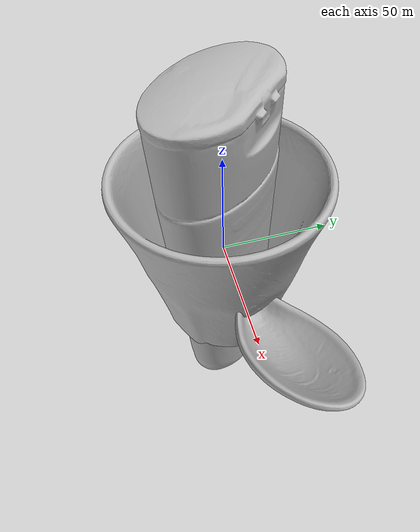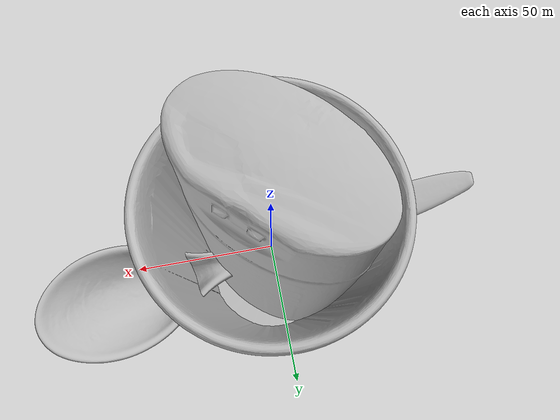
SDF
<sdf version="1.4">
 <world name="default">
  <light name="light1" type="point">
   <pose>0 0 1 0 0 0</pose>
   <diffuse>3 3 3 1</diffuse>
   <specular>3 3 3 1</specular>
  </light>
  <light name="light2" type="point">
   <pose>0 0.5 2 0 0 0</pose>
   <diffuse>1 1 1 1</diffuse>
   <specular>1 1 1 1</specular>
  </light>
  <light name="light3" type="point">
   <pose>0 0.5 2 0 0 0</pose>
   <diffuse>3 3 3 1</diffuse>
   <specular>3 3 3 1</specular>
  </light>
  <scene><ambient>0.7 0.7 0.7</ambient></scene>
  <model name="bottle1">
   <link name="link_bottle1">
    <collision name="default">
     <geometry>
      <mesh><uri>model://pure_zhen/collision_meshes/collision.obj</uri><scale>1.0 1.0 1.0</scale></mesh>
     </geometry>
     <surface>
      <friction><ode><mu>0.5</mu><mu2>0.5</mu2></ode></friction>
      <contact><ode><max_vel>0</max_vel><min_depth>0.0001</min_depth><kp>1e8</kp></ode></contact>
     </surface>
    </collision>
    <visual name="default">
     <geometry>
      <mesh><uri>model://pure_zhen/visual_meshes/visual.dae</uri><scale>1.0 1.0 1.0</scale></mesh>
     </geometry>
    </visual>
    <inertial>
     <mass>0.21128538250923157</mass>
     <pose>-8.582300506532192e-05 0.0002452346670906991 -0.0015797390369698405 -0.027642443229877835 0.005619248866174896 0.3057200614584077</pose>
     <inertia>
      <ixx>0.00063332287</ixx>
      <iyy>0.00063348823</iyy>
      <izz>6.6904315e-05</izz>
      <ixy>0</ixy>
      <ixz>0</ixz>
      <iyz>0</iyz>
     </inertia>
    </inertial>
   </link>
   <pose>-0.07307341694831848 0.37081363797187805 0.09196119010448456 0.016668784483224328 0.002256542051016265 -1.3677991403294825</pose>
  </model>
  <model name="bottle2">
   <link name="link_bottle2">
    <collision name="default">
     <geometry>
      <mesh><uri>model://conditioner/collision_meshes/collision.obj</uri><scale>1.0 1.0 1.0</scale></mesh>
     </geometry>
     <surface>
      <friction><ode><mu>0.5</mu><mu2>0.5</mu2></ode></friction>
      <contact><ode><max_vel>0</max_vel><min_depth>0.0001</min_depth><kp>1e8</kp></ode></contact>
     </surface>
    </collision>
    <visual name="default">
     <geometry>
      <mesh><uri>model://conditioner/visual_meshes/visual.dae</uri><scale>1.0 1.0 1.0</scale></mesh>
     </geometry>
    </visual>
    <inertial>
     <mass>0.3611464500427246</mass>
     <pose>-0.00055994390277192 -0.0001729748910292983 0.004359682556241751 -0.005038374424784669 0.01530604350153207 0.015072341368129788</pose>
     <inertia>
      <ixx>0.00078562286</ixx>
      <iyy>0.0008415716</iyy>
      <izz>0.00012113213</izz>
      <ixy>0</ixy>
      <ixz>0</ixz>
      <iyz>0</iyz>
     </inertia>
    </inertial>
   </link>
   <pose>-0.0752607062458992 0.05611138045787811 0.08122971653938293 0.03689249616265383 -0.015660072038026124 -0.7880453534519309</pose>
  </model>
  <model name="silverware1">
   <link name="link_silverware1">
    <collision name="default">
     <geometry>
      <mesh><uri>model://doraemon_spoon/collision_meshes/collision.obj</uri><scale>1.0 1.0 1.0</scale></mesh>
     </geometry>
     <surface>
      <friction><ode><mu>0.5</mu><mu2>0.5</mu2></ode></friction>
      <contact><ode><max_vel>0</max_vel><min_depth>0.0001</min_depth><kp>1e8</kp></ode></contact>
     </surface>
    </collision>
    <visual name="default">
     <geometry>
      <mesh><uri>model://doraemon_spoon/visual_meshes/visual.dae</uri><scale>1.0 1.0 1.0</scale></mesh>
     </geometry>
    </visual>
    <inertial>
     <mass>0.02099660225212574</mass>
     <pose>-0.02216508239507675 -0.0006374581134878099 -0.003332545980811119 -0.009147162014623967 0.07380421234862718 -0.01412382746948542</pose>
     <inertia>
      <ixx>1.6446534e-06</ixx>
      <iyy>4.671061e-05</iyy>
      <izz>4.7504738e-05</izz>
      <ixy>0</ixy>
      <ixz>0</ixz>
      <iyz>0</iyz>
     </inertia>
    </inertial>
   </link>
   <pose>0.21428658068180084 -0.11419333517551422 0.014739342033863068 0.2787990367393885 -0.010334331897884302 -2.9637897097314845</pose>
  </model>
  <model name="stationery1">
   <link name="link_stationery1">
    <collision name="default">
     <geometry>
      <mesh><uri>model://correction_fuid/collision_meshes/collision.obj</uri><scale>1.0 1.0 1.0</scale></mesh>
     </geometry>
     <surface>
      <friction><ode><mu>0.5</mu><mu2>0.5</mu2></ode></friction>
      <contact><ode><max_vel>0</max_vel><min_depth>0.0001</min_depth><kp>1e8</kp></ode></contact>
     </surface>
    </collision>
    <visual name="default">
     <geometry>
      <mesh><uri>model://correction_fuid/visual_meshes/visual.dae</uri><scale>1.0 1.0 1.0</scale></mesh>
     </geometry>
    </visual>
    <inertial>
     <mass>0.046645622700452805</mass>
     <pose>-0.00012557735317386687 -0.0009722909890115261 -0.001618212671019137 -0.010846607840907904 0.019488357502694276 -0.015992455488392</pose>
     <inertia>
      <ixx>4.5177083e-05</ixx>
      <iyy>2.7341744e-06</iyy>
      <izz>4.635291e-05</izz>
      <ixy>0</ixy>
      <ixz>0</ixz>
      <iyz>0</iyz>
     </inertia>
    </inertial>
   </link>
   <pose>0.028303278610110283 -0.0715242326259613 0.009632829576730728 -0.0017271279709463003 -0.056167910213595226 0.44148558820852873</pose>
  </model>
  <model name="bowl1">
   <link name="link_bowl1">
    <collision name="default">
     <geometry>
      <mesh><uri>model://doraemon_bowl/collision_meshes/collision.obj</uri><scale>1.0 1.0 1.0</scale></mesh>
     </geometry>
     <surface>
      <friction><ode><mu>0.5</mu><mu2>0.5</mu2></ode></friction>
      <contact><ode><max_vel>0</max_vel><min_depth>0.0001</min_depth><kp>1e8</kp></ode></contact>
     </surface>
    </collision>
    <visual name="default">
     <geometry>
      <mesh><uri>model://doraemon_bowl/visual_meshes/visual.dae</uri><scale>1.0 1.0 1.0</scale></mesh>
     </geometry>
    </visual>
    <inertial>
     <mass>0.11811670660972595</mass>
     <pose>-0.014629551209509373 0.0004857121384702623 -0.0020864885300397873 -0.00509396228069995 -0.10568398533611668 -0.02642645986873745</pose>
     <inertia>
      <ixx>0.00016378764</ixx>
      <iyy>0.00021554313</iyy>
      <izz>0.00031711452</izz>
      <ixy>0</ixy>
      <ixz>0</ixz>
      <iyz>0</iyz>
     </inertia>
    </inertial>
   </link>
   <pose>0.029549870640039444 0.29551106691360474 0.02590550296008587 0.008593315565159227 0.006343559024426162 -2.7260808185942755</pose>
  </model>
  <model name="cup1">
   <link name="link_cup1">
    <collision name="default">
     <geometry>
      <mesh><uri>model://hello_kitty_cup/collision_meshes/collision.obj</uri><scale>1.0 1.0 1.0</scale></mesh>
     </geometry>
     <surface>
      <friction><ode><mu>0.5</mu><mu2>0.5</mu2></ode></friction>
      <contact><ode><max_vel>0</max_vel><min_depth>0.0001</min_depth><kp>1e8</kp></ode></contact>
     </surface>
    </collision>
    <visual name="default">
     <geometry>
      <mesh><uri>model://hello_kitty_cup/visual_meshes/visual.dae</uri><scale>1.0 1.0 1.0</scale></mesh>
     </geometry>
    </visual>
    <inertial>
     <mass>0.06522195786237717</mass>
     <pose>0.00027251147548668087 0.0002795039035845548 0.003044978016987443 0.05779148941225366 0.007964866585370347 -0.020452001862605422</pose>
     <inertia>
      <ixx>8.981858e-05</ixx>
      <iyy>9.081978e-05</iyy>
      <izz>7.573251e-05</izz>
      <ixy>0</ixy>
      <ixz>0</ixz>
      <iyz>0</iyz>
     </inertia>
    </inertial>
   </link>
   <pose>0.19636978209018707 -0.35629022121429443 0.046213965862989426 -0.0057101694529728625 0.01078069249986837 -2.5595412532292756</pose>
  </model>
  <model name="plate1">
   <link name="link_plate1">
    <collision name="default">
     <geometry>
      <mesh><uri>model://hello_kitty_plate/collision_meshes/collision.obj</uri><scale>1.0 1.0 1.0</scale></mesh>
     </geometry>
     <surface>
      <friction><ode><mu>0.5</mu><mu2>0.5</mu2></ode></friction>
      <contact><ode><max_vel>0</max_vel><min_depth>0.0001</min_depth><kp>1e8</kp></ode></contact>
     </surface>
    </collision>
    <visual name="default">
     <geometry>
      <mesh><uri>model://hello_kitty_plate/visual_meshes/visual.dae</uri><scale>1.0 1.0 1.0</scale></mesh>
     </geometry>
    </visual>
    <inertial>
     <mass>0.08260300010442734</mass>
     <pose>0.0073142931796610355 0.0002893725468311459 -0.0027947169728577137 -0.00010432002488368626 -0.007054440417891238 -0.014449022362072891</pose>
     <inertia>
      <ixx>0.0001592833</ixx>
      <iyy>0.00030061565</iyy>
      <izz>0.0004564546</izz>
      <ixy>0</ixy>
      <ixz>0</ixz>
      <iyz>0</iyz>
     </inertia>
    </inertial>
   </link>
   <pose>0.18892726302146912 0.06862794607877731 0.008291332982480526 0.0004626440929863939 0.0041691205007272514 -3.0535929322031534</pose>
  </model>
  <model name="box4">
   <link name="link_box4">
    <collision name="default">
     <geometry>
      <mesh><uri>model://wooden_puzzle1/collision_meshes/collision.obj</uri><scale>1.0 1.0 1.0</scale></mesh>
     </geometry>
     <surface>
      <friction><ode><mu>0.5</mu><mu2>0.5</mu2></ode></friction>
      <contact><ode><max_vel>0</max_vel><min_depth>0.0001</min_depth><kp>1e8</kp></ode></contact>
     </surface>
    </collision>
    <visual name="default">
     <geometry>
      <mesh><uri>model://wooden_puzzle1/visual_meshes/visual.dae</uri><scale>1.0 1.0 1.0</scale></mesh>
     </geometry>
    </visual>
    <inertial>
     <mass>0.034562814980745316</mass>
     <pose>-0.0001735068071866408 7.97226166469045e-05 -9.191555000143126e-05 -0.07784459827727222 -0.2636103773563706 -0.5528705263726328</pose>
     <inertia>
      <ixx>6.5210584e-06</ixx>
      <iyy>6.395525e-06</iyy>
      <izz>6.471823e-06</izz>
      <ixy>0</ixy>
      <ixz>0</ixz>
      <iyz>0</iyz>
     </inertia>
    </inertial>
   </link>
   <pose>0.27661117911338806 -0.35495826601982117 0.016802022233605385 0.010511839684342848 -0.009455098556049339 0.7346831416525664</pose>
  </model>
  <physics type="ode">
   <max_contacts>50</max_contacts>
   <ode>
    <solver><type>quick</type><iters>75</iters></solver>
    <constraints>
     <contact_max_correcting_vel>0</contact_max_correcting_vel>
     <contact_surface_layer>0</contact_surface_layer>
    </constraints>
   </ode>
  </physics>
 </world>
</sdf>
